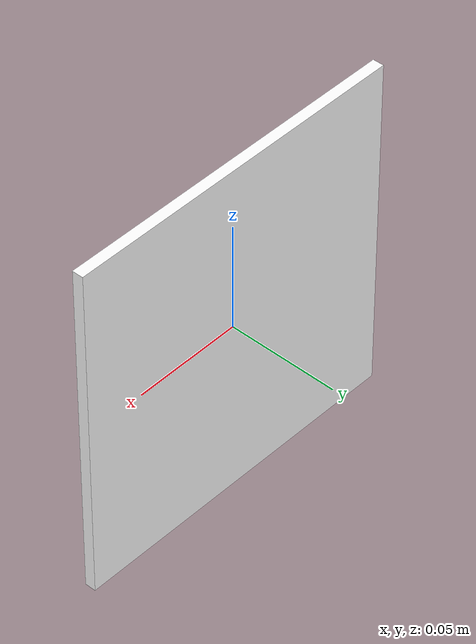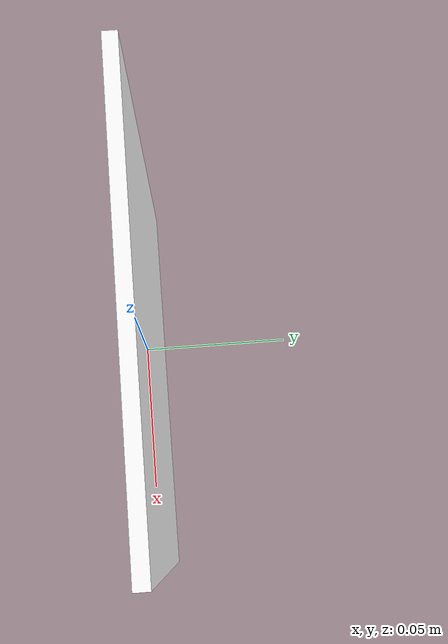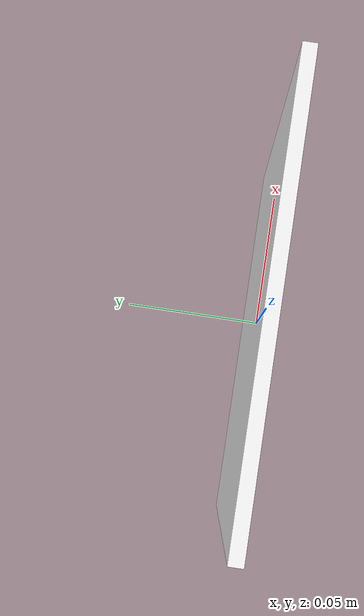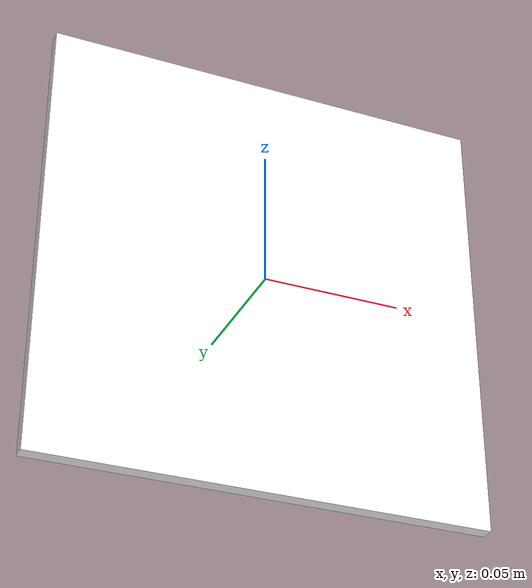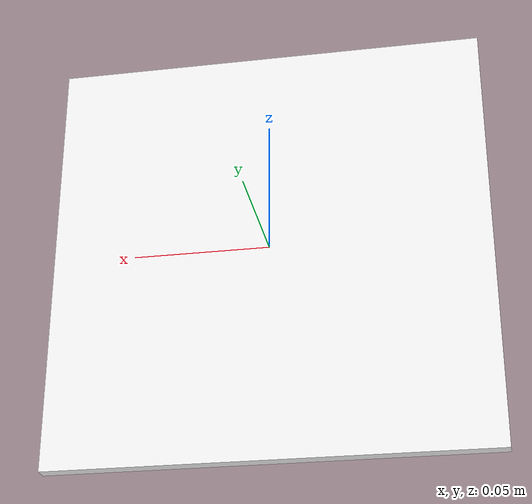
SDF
<?xml version="1.0" ?>
<sdf version="1.9">
  <model name="Apriltag36_11_00000">
    <static>true</static>

    <link name="tag_link">
      <pose>0 0 0 0 0 0</pose>

      <!-- Visual: thin square plate with the tag texture -->
      <visual name="tag_visual">
        <geometry>
          <!-- Adjust size to your real tag; 0.16 m is a common test size -->
          <box><size>0.16 0.005 0.16</size></box>
        </geometry>
        <material>
          <pbr>
            <metal>
              <albedo_map>model://Apriltag36_11_00000/materials/textures/tag36_11_00000.png</albedo_map>
              <!-- optional tweaks -->
              <roughness>0.8</roughness>
              <metalness>0.0</metalness>
            </metal>
          </pbr>
          <ambient>1 1 1 1</ambient>
          <diffuse>1 1 1 1</diffuse>
          <double_sided>true</double_sided>
        </material>

        <cast_shadows>false</cast_shadows>
      </visual>

      <!-- Collision so physics is happy (even if static) -->
      <collision name="tag_collision">
        <geometry>
          <box><size>0.16 0.005 0.16</size></box>
        </geometry>
      </collision>

      <!-- Tiny but nonzero inertial values -->
      <inertial>
        <mass>0.01</mass>
        <inertia>
          <ixx>1e-6</ixx><iyy>1e-6</iyy><izz>1e-6</izz>
          <ixy>0</ixy><ixz>0</ixz><iyz>0</iyz>
        </inertia>
      </inertial>
    </link>
  </model>
</sdf>
